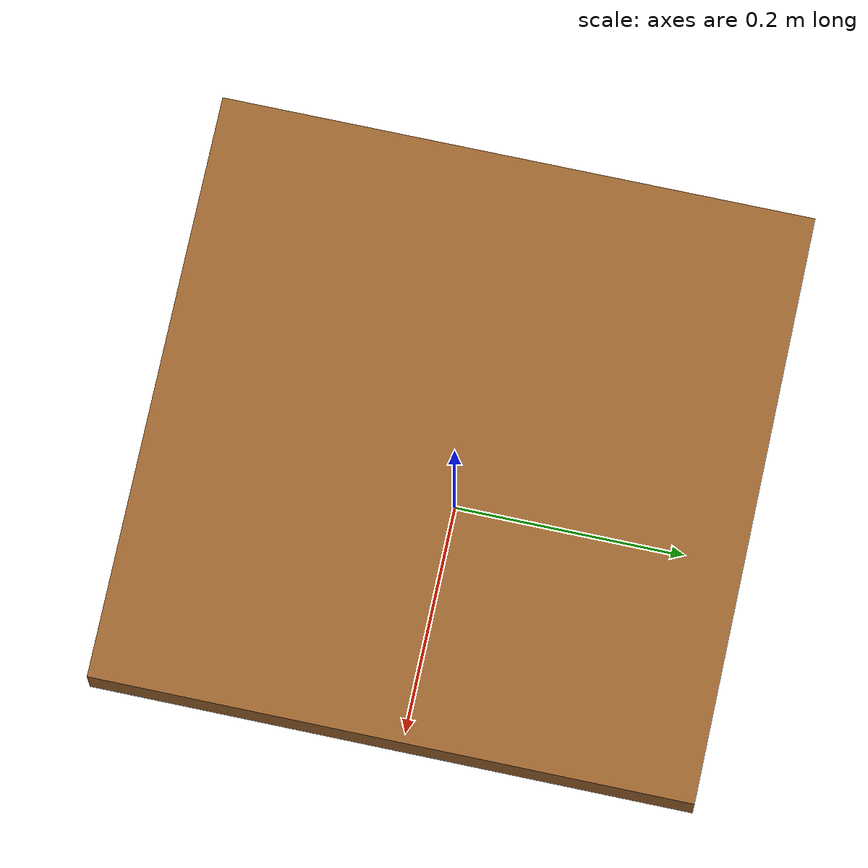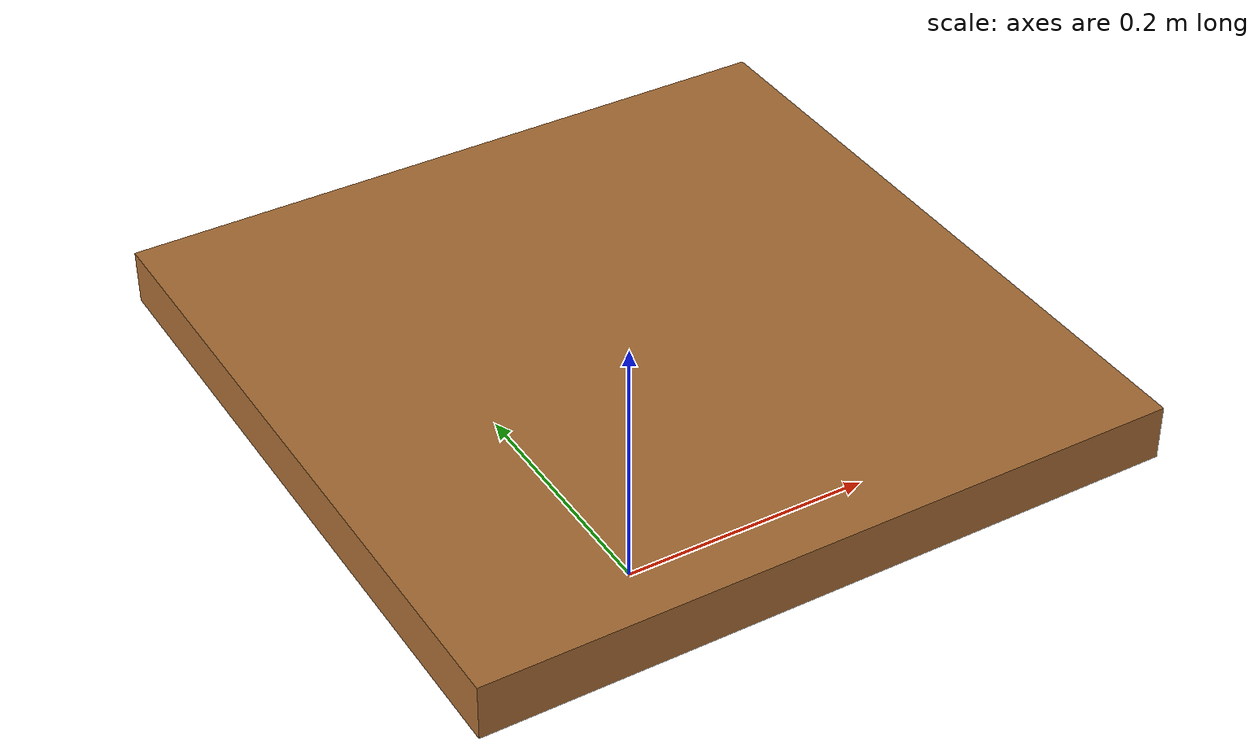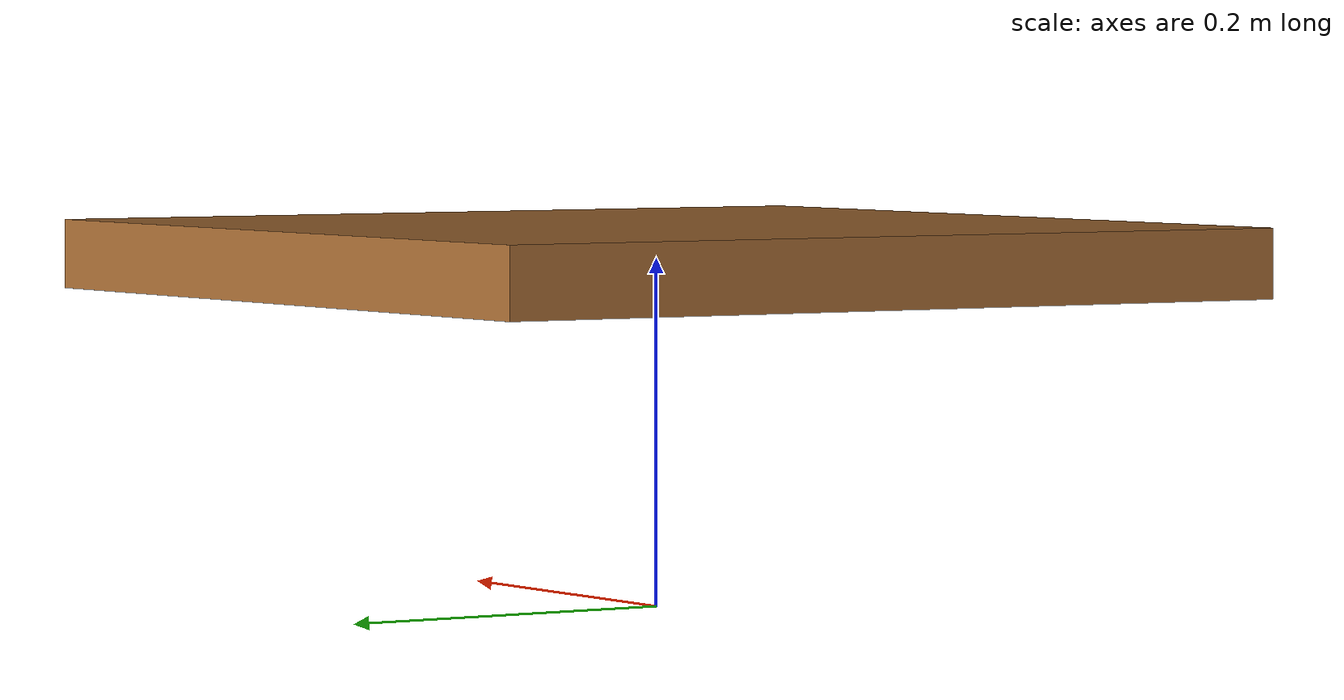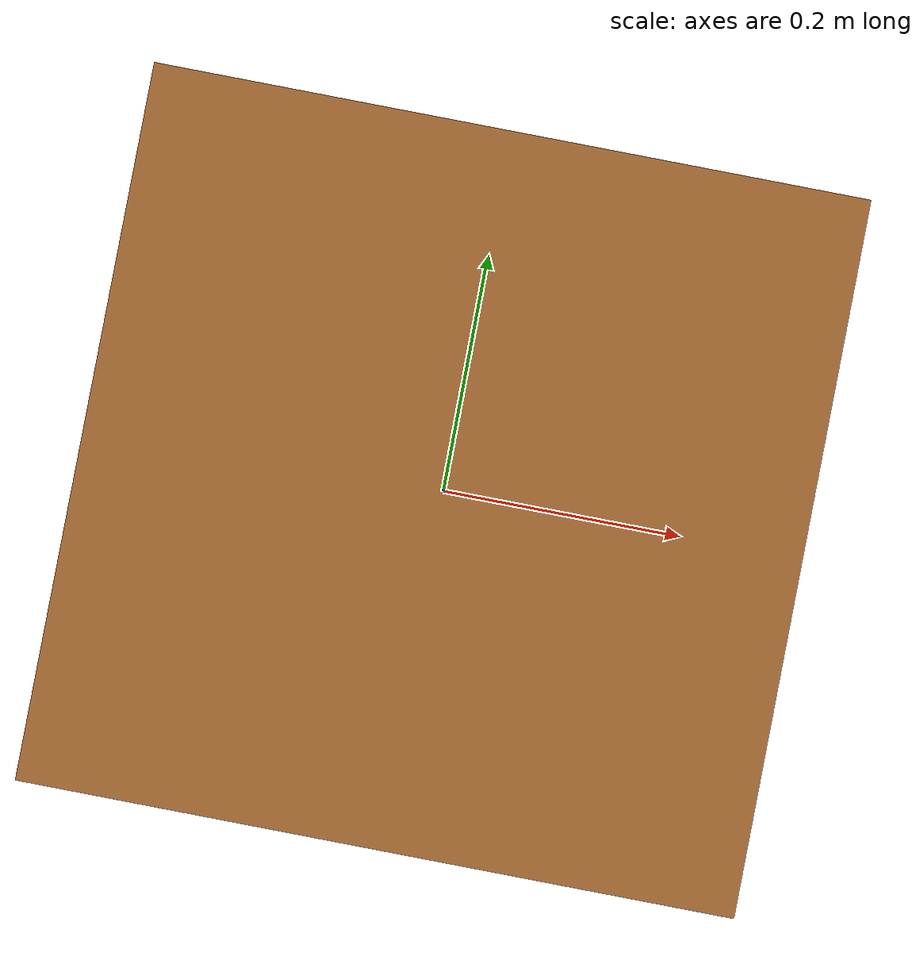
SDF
<?xml version="1.0"?><sdf version="1.6"><model name="table"><static>true</static><link name="top"><pose>0 0 0.20 0 0 0</pose><collision name="collision"><geometry><box><size>0.50 0.50 0.04</size></box></geometry></collision><visual name="visual"><geometry><box><size>0.50 0.50 0.04</size></box></geometry><material><ambient>0.55 0.35 0.16 1</ambient><diffuse>0.65 0.42 0.20 1</diffuse></material></visual></link></model></sdf>
